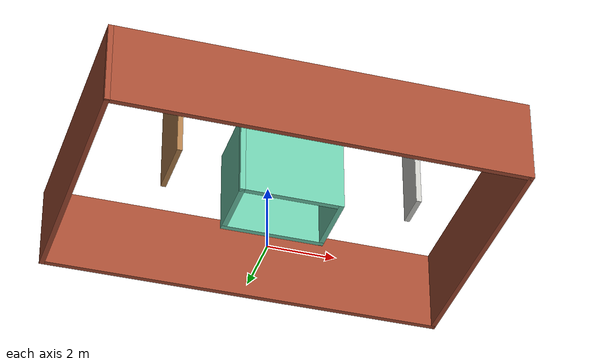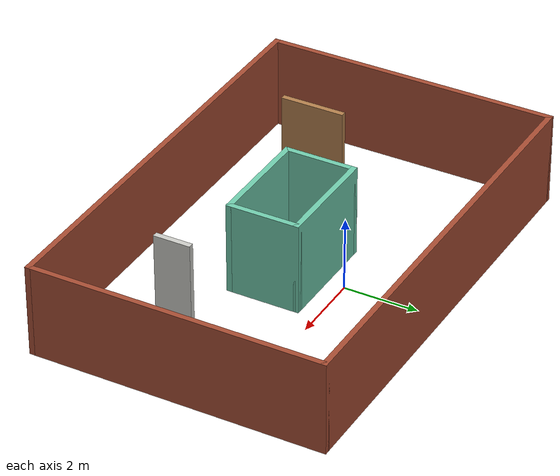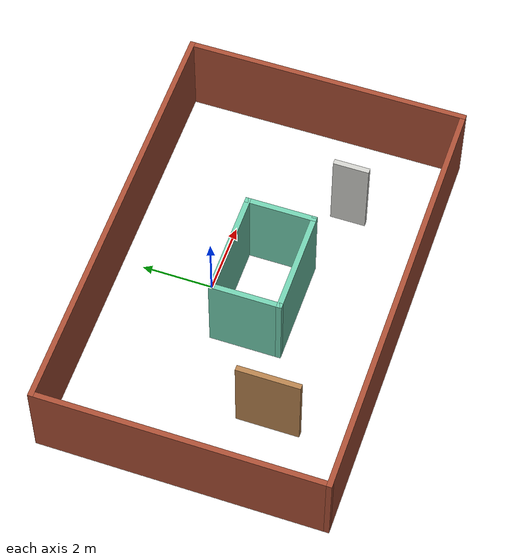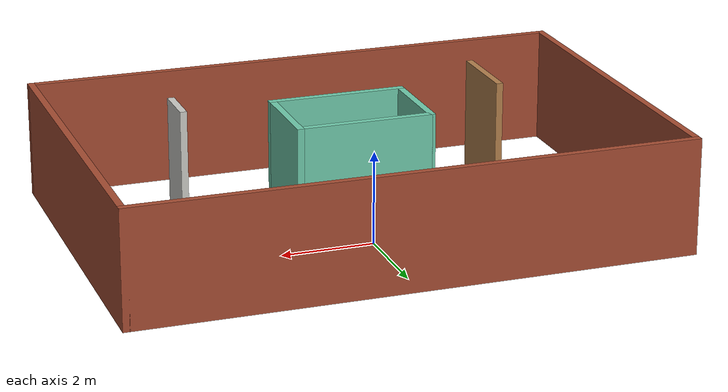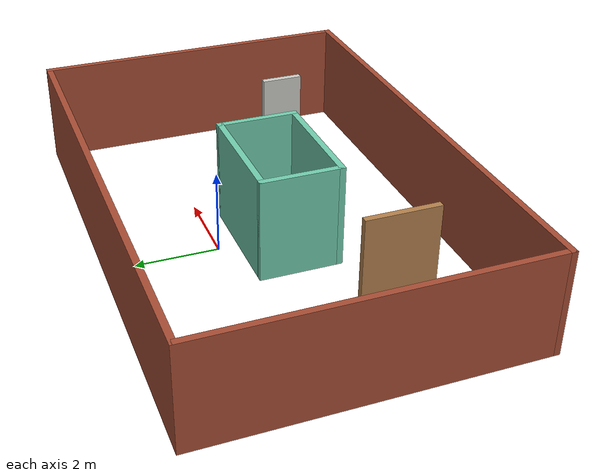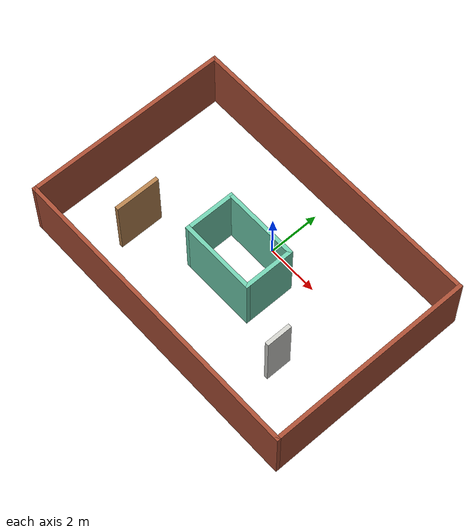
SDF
<?xml version='1.0'?>
<sdf version='1.7'>
  <model name='Building'>
    <link name='Wall_0'>
      <pose>-0.02 -0.5525 0 0 -0 0</pose>
      <self_collide>0</self_collide>
      <enable_wind>0</enable_wind>
      <kinematic>0</kinematic>
      <visual name='Wall_0_Visual'>
        <pose>0 0 1.25 0 -0 0</pose>
        <geometry>
          <box>
            <size>3 0.15 2.5</size>
          </box>
        </geometry>
        <material>
          <script>
            <uri>file://media/materials/scripts/gazebo.material</uri>
            <name>Gazebo/Grey</name>
          </script>
          <ambient>0.435294 0.796078 0.67451 1</ambient>
          <shader type='pixel'/>
        </material>
        <meta>
          <layer>0</layer>
        </meta>
        <transparency>0</transparency>
        <cast_shadows>1</cast_shadows>
      </visual>
      <collision name='Wall_0_Collision'>
        <laser_retro>0</laser_retro>
        <max_contacts>10</max_contacts>
        <pose>0 0 1.25 0 -0 0</pose>
        <geometry>
          <box>
            <size>3 0.15 2.5</size>
          </box>
        </geometry>
        <surface>
          <friction>
            <ode>
              <mu>1</mu>
              <mu2>1</mu2>
              <fdir1>0 0 0</fdir1>
              <slip1>0</slip1>
              <slip2>0</slip2>
            </ode>
            <torsional>
              <coefficient>1</coefficient>
              <patch_radius>0</patch_radius>
              <surface_radius>0</surface_radius>
              <use_patch_radius>1</use_patch_radius>
              <ode>
                <slip>0</slip>
              </ode>
            </torsional>
          </friction>
          <bounce>
            <restitution_coefficient>0</restitution_coefficient>
            <threshold>1e+06</threshold>
          </bounce>
          <contact>
            <collide_without_contact>0</collide_without_contact>
            <collide_without_contact_bitmask>1</collide_without_contact_bitmask>
            <collide_bitmask>1</collide_bitmask>
            <ode>
              <soft_cfm>0</soft_cfm>
              <soft_erp>0.2</soft_erp>
              <kp>1e+13</kp>
              <kd>1</kd>
              <max_vel>0.01</max_vel>
              <min_depth>0</min_depth>
            </ode>
            <bullet>
              <split_impulse>1</split_impulse>
              <split_impulse_penetration_threshold>-0.01</split_impulse_penetration_threshold>
              <soft_cfm>0</soft_cfm>
              <soft_erp>0.2</soft_erp>
              <kp>1e+13</kp>
              <kd>1</kd>
            </bullet>
          </contact>
        </surface>
      </collision>
    </link>
    <link name='Wall_1'>
      <pose>1.405 -1.4775 0 0 0 -1.5708</pose>
      <self_collide>0</self_collide>
      <enable_wind>0</enable_wind>
      <kinematic>0</kinematic>
      <visual name='Wall_1_Visual'>
        <pose>0 0 1.25 0 -0 0</pose>
        <geometry>
          <box>
            <size>2 0.15 2.5</size>
          </box>
        </geometry>
        <material>
          <script>
            <uri>file://media/materials/scripts/gazebo.material</uri>
            <name>Gazebo/Grey</name>
          </script>
          <ambient>0.435294 0.796078 0.67451 1</ambient>
          <shader type='pixel'/>
        </material>
        <meta>
          <layer>0</layer>
        </meta>
        <transparency>0</transparency>
        <cast_shadows>1</cast_shadows>
      </visual>
      <collision name='Wall_1_Collision'>
        <laser_retro>0</laser_retro>
        <max_contacts>10</max_contacts>
        <pose>0 0 1.25 0 -0 0</pose>
        <geometry>
          <box>
            <size>2 0.15 2.5</size>
          </box>
        </geometry>
        <surface>
          <friction>
            <ode>
              <mu>1</mu>
              <mu2>1</mu2>
              <fdir1>0 0 0</fdir1>
              <slip1>0</slip1>
              <slip2>0</slip2>
            </ode>
            <torsional>
              <coefficient>1</coefficient>
              <patch_radius>0</patch_radius>
              <surface_radius>0</surface_radius>
              <use_patch_radius>1</use_patch_radius>
              <ode>
                <slip>0</slip>
              </ode>
            </torsional>
          </friction>
          <bounce>
            <restitution_coefficient>0</restitution_coefficient>
            <threshold>1e+06</threshold>
          </bounce>
          <contact>
            <collide_without_contact>0</collide_without_contact>
            <collide_without_contact_bitmask>1</collide_without_contact_bitmask>
            <collide_bitmask>1</collide_bitmask>
            <ode>
              <soft_cfm>0</soft_cfm>
              <soft_erp>0.2</soft_erp>
              <kp>1e+13</kp>
              <kd>1</kd>
              <max_vel>0.01</max_vel>
              <min_depth>0</min_depth>
            </ode>
            <bullet>
              <split_impulse>1</split_impulse>
              <split_impulse_penetration_threshold>-0.01</split_impulse_penetration_threshold>
              <soft_cfm>0</soft_cfm>
              <soft_erp>0.2</soft_erp>
              <kp>1e+13</kp>
              <kd>1</kd>
            </bullet>
          </contact>
        </surface>
      </collision>
    </link>
    <link name='Wall_16'>
      <pose>-3.555 -2.8225 0 0 0 -1.5708</pose>
      <self_collide>0</self_collide>
      <enable_wind>0</enable_wind>
      <kinematic>0</kinematic>
      <visual name='Wall_16_Visual'>
        <pose>0 0 1.25 0 -0 0</pose>
        <geometry>
          <box>
            <size>1.75 0.15 2.5</size>
          </box>
        </geometry>
        <material>
          <script>
            <uri>file://media/materials/scripts/gazebo.material</uri>
            <name>Gazebo/Wood</name>
          </script>
          <ambient>1 1 1 1</ambient>
          <shader type='pixel'/>
        </material>
        <meta>
          <layer>0</layer>
        </meta>
        <transparency>0</transparency>
        <cast_shadows>1</cast_shadows>
      </visual>
      <collision name='Wall_16_Collision'>
        <laser_retro>0</laser_retro>
        <max_contacts>10</max_contacts>
        <pose>0 0 1.25 0 -0 0</pose>
        <geometry>
          <box>
            <size>1.75 0.15 2.5</size>
          </box>
        </geometry>
        <surface>
          <friction>
            <ode>
              <mu>1</mu>
              <mu2>1</mu2>
              <fdir1>0 0 0</fdir1>
              <slip1>0</slip1>
              <slip2>0</slip2>
            </ode>
            <torsional>
              <coefficient>1</coefficient>
              <patch_radius>0</patch_radius>
              <surface_radius>0</surface_radius>
              <use_patch_radius>1</use_patch_radius>
              <ode>
                <slip>0</slip>
              </ode>
            </torsional>
          </friction>
          <bounce>
            <restitution_coefficient>0</restitution_coefficient>
            <threshold>1e+06</threshold>
          </bounce>
          <contact>
            <collide_without_contact>0</collide_without_contact>
            <collide_without_contact_bitmask>1</collide_without_contact_bitmask>
            <collide_bitmask>1</collide_bitmask>
            <ode>
              <soft_cfm>0</soft_cfm>
              <soft_erp>0.2</soft_erp>
              <kp>1e+13</kp>
              <kd>1</kd>
              <max_vel>0.01</max_vel>
              <min_depth>0</min_depth>
            </ode>
            <bullet>
              <split_impulse>1</split_impulse>
              <split_impulse_penetration_threshold>-0.01</split_impulse_penetration_threshold>
              <soft_cfm>0</soft_cfm>
              <soft_erp>0.2</soft_erp>
              <kp>1e+13</kp>
              <kd>1</kd>
            </bullet>
          </contact>
        </surface>
      </collision>
    </link>
    <link name='Wall_2'>
      <pose>-0.02 -2.4025 0 0 -0 3.14159</pose>
      <self_collide>0</self_collide>
      <enable_wind>0</enable_wind>
      <kinematic>0</kinematic>
      <visual name='Wall_2_Visual'>
        <pose>0 0 1.25 0 -0 0</pose>
        <geometry>
          <box>
            <size>3 0.15 2.5</size>
          </box>
        </geometry>
        <material>
          <script>
            <uri>file://media/materials/scripts/gazebo.material</uri>
            <name>Gazebo/Grey</name>
          </script>
          <ambient>0.435294 0.796078 0.67451 1</ambient>
          <shader type='pixel'/>
        </material>
        <meta>
          <layer>0</layer>
        </meta>
        <transparency>0</transparency>
        <cast_shadows>1</cast_shadows>
      </visual>
      <collision name='Wall_2_Collision'>
        <laser_retro>0</laser_retro>
        <max_contacts>10</max_contacts>
        <pose>0 0 1.25 0 -0 0</pose>
        <geometry>
          <box>
            <size>3 0.15 2.5</size>
          </box>
        </geometry>
        <surface>
          <friction>
            <ode>
              <mu>1</mu>
              <mu2>1</mu2>
              <fdir1>0 0 0</fdir1>
              <slip1>0</slip1>
              <slip2>0</slip2>
            </ode>
            <torsional>
              <coefficient>1</coefficient>
              <patch_radius>0</patch_radius>
              <surface_radius>0</surface_radius>
              <use_patch_radius>1</use_patch_radius>
              <ode>
                <slip>0</slip>
              </ode>
            </torsional>
          </friction>
          <bounce>
            <restitution_coefficient>0</restitution_coefficient>
            <threshold>1e+06</threshold>
          </bounce>
          <contact>
            <collide_without_contact>0</collide_without_contact>
            <collide_without_contact_bitmask>1</collide_without_contact_bitmask>
            <collide_bitmask>1</collide_bitmask>
            <ode>
              <soft_cfm>0</soft_cfm>
              <soft_erp>0.2</soft_erp>
              <kp>1e+13</kp>
              <kd>1</kd>
              <max_vel>0.01</max_vel>
              <min_depth>0</min_depth>
            </ode>
            <bullet>
              <split_impulse>1</split_impulse>
              <split_impulse_penetration_threshold>-0.01</split_impulse_penetration_threshold>
              <soft_cfm>0</soft_cfm>
              <soft_erp>0.2</soft_erp>
              <kp>1e+13</kp>
              <kd>1</kd>
            </bullet>
          </contact>
        </surface>
      </collision>
    </link>
    <link name='Wall_29'>
      <pose>3.355 -2.8275 0 0 0 -1.5708</pose>
      <self_collide>0</self_collide>
      <enable_wind>0</enable_wind>
      <kinematic>0</kinematic>
      <visual name='Wall_29_Visual'>
        <pose>0 0 1.25 0 -0 0</pose>
        <geometry>
          <box>
            <size>1 0.15 2.5</size>
          </box>
        </geometry>
        <material>
          <script>
            <uri>file://media/materials/scripts/gazebo.material</uri>
            <name>Gazebo/CeilingTiled</name>
          </script>
          <ambient>1 1 1 1</ambient>
          <shader type='pixel'/>
        </material>
        <meta>
          <layer>0</layer>
        </meta>
        <transparency>0</transparency>
        <cast_shadows>1</cast_shadows>
      </visual>
      <collision name='Wall_29_Collision'>
        <laser_retro>0</laser_retro>
        <max_contacts>10</max_contacts>
        <pose>0 0 1.25 0 -0 0</pose>
        <geometry>
          <box>
            <size>1 0.15 2.5</size>
          </box>
        </geometry>
        <surface>
          <friction>
            <ode>
              <mu>1</mu>
              <mu2>1</mu2>
              <fdir1>0 0 0</fdir1>
              <slip1>0</slip1>
              <slip2>0</slip2>
            </ode>
            <torsional>
              <coefficient>1</coefficient>
              <patch_radius>0</patch_radius>
              <surface_radius>0</surface_radius>
              <use_patch_radius>1</use_patch_radius>
              <ode>
                <slip>0</slip>
              </ode>
            </torsional>
          </friction>
          <bounce>
            <restitution_coefficient>0</restitution_coefficient>
            <threshold>1e+06</threshold>
          </bounce>
          <contact>
            <collide_without_contact>0</collide_without_contact>
            <collide_without_contact_bitmask>1</collide_without_contact_bitmask>
            <collide_bitmask>1</collide_bitmask>
            <ode>
              <soft_cfm>0</soft_cfm>
              <soft_erp>0.2</soft_erp>
              <kp>1e+13</kp>
              <kd>1</kd>
              <max_vel>0.01</max_vel>
              <min_depth>0</min_depth>
            </ode>
            <bullet>
              <split_impulse>1</split_impulse>
              <split_impulse_penetration_threshold>-0.01</split_impulse_penetration_threshold>
              <soft_cfm>0</soft_cfm>
              <soft_erp>0.2</soft_erp>
              <kp>1e+13</kp>
              <kd>1</kd>
            </bullet>
          </contact>
        </surface>
      </collision>
    </link>
    <link name='Wall_3'>
      <pose>-1.445 -1.4775 0 0 -0 1.5708</pose>
      <self_collide>0</self_collide>
      <enable_wind>0</enable_wind>
      <kinematic>0</kinematic>
      <visual name='Wall_3_Visual'>
        <pose>0 0 1.25 0 -0 0</pose>
        <geometry>
          <box>
            <size>2 0.15 2.5</size>
          </box>
        </geometry>
        <material>
          <script>
            <uri>file://media/materials/scripts/gazebo.material</uri>
            <name>Gazebo/Grey</name>
          </script>
          <ambient>0.435294 0.796078 0.67451 1</ambient>
          <shader type='pixel'/>
        </material>
        <meta>
          <layer>0</layer>
        </meta>
        <transparency>0</transparency>
        <cast_shadows>1</cast_shadows>
      </visual>
      <collision name='Wall_3_Collision'>
        <laser_retro>0</laser_retro>
        <max_contacts>10</max_contacts>
        <pose>0 0 1.25 0 -0 0</pose>
        <geometry>
          <box>
            <size>2 0.15 2.5</size>
          </box>
        </geometry>
        <surface>
          <friction>
            <ode>
              <mu>1</mu>
              <mu2>1</mu2>
              <fdir1>0 0 0</fdir1>
              <slip1>0</slip1>
              <slip2>0</slip2>
            </ode>
            <torsional>
              <coefficient>1</coefficient>
              <patch_radius>0</patch_radius>
              <surface_radius>0</surface_radius>
              <use_patch_radius>1</use_patch_radius>
              <ode>
                <slip>0</slip>
              </ode>
            </torsional>
          </friction>
          <bounce>
            <restitution_coefficient>0</restitution_coefficient>
            <threshold>1e+06</threshold>
          </bounce>
          <contact>
            <collide_without_contact>0</collide_without_contact>
            <collide_without_contact_bitmask>1</collide_without_contact_bitmask>
            <collide_bitmask>1</collide_bitmask>
            <ode>
              <soft_cfm>0</soft_cfm>
              <soft_erp>0.2</soft_erp>
              <kp>1e+13</kp>
              <kd>1</kd>
              <max_vel>0.01</max_vel>
              <min_depth>0</min_depth>
            </ode>
            <bullet>
              <split_impulse>1</split_impulse>
              <split_impulse_penetration_threshold>-0.01</split_impulse_penetration_threshold>
              <soft_cfm>0</soft_cfm>
              <soft_erp>0.2</soft_erp>
              <kp>1e+13</kp>
              <kd>1</kd>
            </bullet>
          </contact>
        </surface>
      </collision>
    </link>
    <link name='Wall_5'>
      <pose>0 2.6475 0 0 -0 0</pose>
      <self_collide>0</self_collide>
      <enable_wind>0</enable_wind>
      <kinematic>0</kinematic>
      <visual name='Wall_5_Visual'>
        <pose>0 0 1.25 0 -0 0</pose>
        <geometry>
          <box>
            <size>12 0.15 2.5</size>
          </box>
        </geometry>
        <material>
          <script>
            <uri>file://media/materials/scripts/gazebo.material</uri>
            <name>Gazebo/Bricks</name>
          </script>
          <ambient>1 1 1 1</ambient>
          <shader type='pixel'/>
        </material>
        <meta>
          <layer>0</layer>
        </meta>
        <transparency>0</transparency>
        <cast_shadows>1</cast_shadows>
      </visual>
      <collision name='Wall_5_Collision'>
        <laser_retro>0</laser_retro>
        <max_contacts>10</max_contacts>
        <pose>0 0 1.25 0 -0 0</pose>
        <geometry>
          <box>
            <size>12 0.15 2.5</size>
          </box>
        </geometry>
        <surface>
          <friction>
            <ode>
              <mu>1</mu>
              <mu2>1</mu2>
              <fdir1>0 0 0</fdir1>
              <slip1>0</slip1>
              <slip2>0</slip2>
            </ode>
            <torsional>
              <coefficient>1</coefficient>
              <patch_radius>0</patch_radius>
              <surface_radius>0</surface_radius>
              <use_patch_radius>1</use_patch_radius>
              <ode>
                <slip>0</slip>
              </ode>
            </torsional>
          </friction>
          <bounce>
            <restitution_coefficient>0</restitution_coefficient>
            <threshold>1e+06</threshold>
          </bounce>
          <contact>
            <collide_without_contact>0</collide_without_contact>
            <collide_without_contact_bitmask>1</collide_without_contact_bitmask>
            <collide_bitmask>1</collide_bitmask>
            <ode>
              <soft_cfm>0</soft_cfm>
              <soft_erp>0.2</soft_erp>
              <kp>1e+13</kp>
              <kd>1</kd>
              <max_vel>0.01</max_vel>
              <min_depth>0</min_depth>
            </ode>
            <bullet>
              <split_impulse>1</split_impulse>
              <split_impulse_penetration_threshold>-0.01</split_impulse_penetration_threshold>
              <soft_cfm>0</soft_cfm>
              <soft_erp>0.2</soft_erp>
              <kp>1e+13</kp>
              <kd>1</kd>
            </bullet>
          </contact>
        </surface>
      </collision>
    </link>
    <link name='Wall_6'>
      <pose>5.925 -1.2775 0 0 0 -1.5708</pose>
      <self_collide>0</self_collide>
      <enable_wind>0</enable_wind>
      <kinematic>0</kinematic>
      <visual name='Wall_6_Visual'>
        <pose>0 0 1.25 0 -0 0</pose>
        <geometry>
          <box>
            <size>8 0.15 2.5</size>
          </box>
        </geometry>
        <material>
          <script>
            <uri>file://media/materials/scripts/gazebo.material</uri>
            <name>Gazebo/Bricks</name>
          </script>
          <ambient>1 1 1 1</ambient>
          <shader type='pixel'/>
        </material>
        <meta>
          <layer>0</layer>
        </meta>
        <transparency>0</transparency>
        <cast_shadows>1</cast_shadows>
      </visual>
      <collision name='Wall_6_Collision'>
        <laser_retro>0</laser_retro>
        <max_contacts>10</max_contacts>
        <pose>0 0 1.25 0 -0 0</pose>
        <geometry>
          <box>
            <size>8 0.15 2.5</size>
          </box>
        </geometry>
        <surface>
          <friction>
            <ode>
              <mu>1</mu>
              <mu2>1</mu2>
              <fdir1>0 0 0</fdir1>
              <slip1>0</slip1>
              <slip2>0</slip2>
            </ode>
            <torsional>
              <coefficient>1</coefficient>
              <patch_radius>0</patch_radius>
              <surface_radius>0</surface_radius>
              <use_patch_radius>1</use_patch_radius>
              <ode>
                <slip>0</slip>
              </ode>
            </torsional>
          </friction>
          <bounce>
            <restitution_coefficient>0</restitution_coefficient>
            <threshold>1e+06</threshold>
          </bounce>
          <contact>
            <collide_without_contact>0</collide_without_contact>
            <collide_without_contact_bitmask>1</collide_without_contact_bitmask>
            <collide_bitmask>1</collide_bitmask>
            <ode>
              <soft_cfm>0</soft_cfm>
              <soft_erp>0.2</soft_erp>
              <kp>1e+13</kp>
              <kd>1</kd>
              <max_vel>0.01</max_vel>
              <min_depth>0</min_depth>
            </ode>
            <bullet>
              <split_impulse>1</split_impulse>
              <split_impulse_penetration_threshold>-0.01</split_impulse_penetration_threshold>
              <soft_cfm>0</soft_cfm>
              <soft_erp>0.2</soft_erp>
              <kp>1e+13</kp>
              <kd>1</kd>
            </bullet>
          </contact>
        </surface>
      </collision>
    </link>
    <link name='Wall_7'>
      <pose>0 -5.2025 0 0 -0 3.14159</pose>
      <self_collide>0</self_collide>
      <enable_wind>0</enable_wind>
      <kinematic>0</kinematic>
      <visual name='Wall_7_Visual'>
        <pose>0 0 1.25 0 -0 0</pose>
        <geometry>
          <box>
            <size>12 0.15 2.5</size>
          </box>
        </geometry>
        <material>
          <script>
            <uri>file://media/materials/scripts/gazebo.material</uri>
            <name>Gazebo/Bricks</name>
          </script>
          <ambient>1 1 1 1</ambient>
          <shader type='pixel'/>
        </material>
        <meta>
          <layer>0</layer>
        </meta>
        <transparency>0</transparency>
        <cast_shadows>1</cast_shadows>
      </visual>
      <collision name='Wall_7_Collision'>
        <laser_retro>0</laser_retro>
        <max_contacts>10</max_contacts>
        <pose>0 0 1.25 0 -0 0</pose>
        <geometry>
          <box>
            <size>12 0.15 2.5</size>
          </box>
        </geometry>
        <surface>
          <friction>
            <ode>
              <mu>1</mu>
              <mu2>1</mu2>
              <fdir1>0 0 0</fdir1>
              <slip1>0</slip1>
              <slip2>0</slip2>
            </ode>
            <torsional>
              <coefficient>1</coefficient>
              <patch_radius>0</patch_radius>
              <surface_radius>0</surface_radius>
              <use_patch_radius>1</use_patch_radius>
              <ode>
                <slip>0</slip>
              </ode>
            </torsional>
          </friction>
          <bounce>
            <restitution_coefficient>0</restitution_coefficient>
            <threshold>1e+06</threshold>
          </bounce>
          <contact>
            <collide_without_contact>0</collide_without_contact>
            <collide_without_contact_bitmask>1</collide_without_contact_bitmask>
            <collide_bitmask>1</collide_bitmask>
            <ode>
              <soft_cfm>0</soft_cfm>
              <soft_erp>0.2</soft_erp>
              <kp>1e+13</kp>
              <kd>1</kd>
              <max_vel>0.01</max_vel>
              <min_depth>0</min_depth>
            </ode>
            <bullet>
              <split_impulse>1</split_impulse>
              <split_impulse_penetration_threshold>-0.01</split_impulse_penetration_threshold>
              <soft_cfm>0</soft_cfm>
              <soft_erp>0.2</soft_erp>
              <kp>1e+13</kp>
              <kd>1</kd>
            </bullet>
          </contact>
        </surface>
      </collision>
    </link>
    <link name='Wall_8'>
      <pose>-5.925 -1.2775 0 0 -0 1.5708</pose>
      <self_collide>0</self_collide>
      <enable_wind>0</enable_wind>
      <kinematic>0</kinematic>
      <visual name='Wall_8_Visual'>
        <pose>0 0 1.25 0 -0 0</pose>
        <geometry>
          <box>
            <size>8 0.15 2.5</size>
          </box>
        </geometry>
        <material>
          <script>
            <uri>file://media/materials/scripts/gazebo.material</uri>
            <name>Gazebo/Bricks</name>
          </script>
          <ambient>1 1 1 1</ambient>
          <shader type='pixel'/>
        </material>
        <meta>
          <layer>0</layer>
        </meta>
        <transparency>0</transparency>
        <cast_shadows>1</cast_shadows>
      </visual>
      <collision name='Wall_8_Collision'>
        <laser_retro>0</laser_retro>
        <max_contacts>10</max_contacts>
        <pose>0 0 1.25 0 -0 0</pose>
        <geometry>
          <box>
            <size>8 0.15 2.5</size>
          </box>
        </geometry>
        <surface>
          <friction>
            <ode>
              <mu>1</mu>
              <mu2>1</mu2>
              <fdir1>0 0 0</fdir1>
              <slip1>0</slip1>
              <slip2>0</slip2>
            </ode>
            <torsional>
              <coefficient>1</coefficient>
              <patch_radius>0</patch_radius>
              <surface_radius>0</surface_radius>
              <use_patch_radius>1</use_patch_radius>
              <ode>
                <slip>0</slip>
              </ode>
            </torsional>
          </friction>
          <bounce>
            <restitution_coefficient>0</restitution_coefficient>
            <threshold>1e+06</threshold>
          </bounce>
          <contact>
            <collide_without_contact>0</collide_without_contact>
            <collide_without_contact_bitmask>1</collide_without_contact_bitmask>
            <collide_bitmask>1</collide_bitmask>
            <ode>
              <soft_cfm>0</soft_cfm>
              <soft_erp>0.2</soft_erp>
              <kp>1e+13</kp>
              <kd>1</kd>
              <max_vel>0.01</max_vel>
              <min_depth>0</min_depth>
            </ode>
            <bullet>
              <split_impulse>1</split_impulse>
              <split_impulse_penetration_threshold>-0.01</split_impulse_penetration_threshold>
              <soft_cfm>0</soft_cfm>
              <soft_erp>0.2</soft_erp>
              <kp>1e+13</kp>
              <kd>1</kd>
            </bullet>
          </contact>
        </surface>
      </collision>
    </link>
    <static>1</static>
    <allow_auto_disable>1</allow_auto_disable>
  </model>
</sdf>
